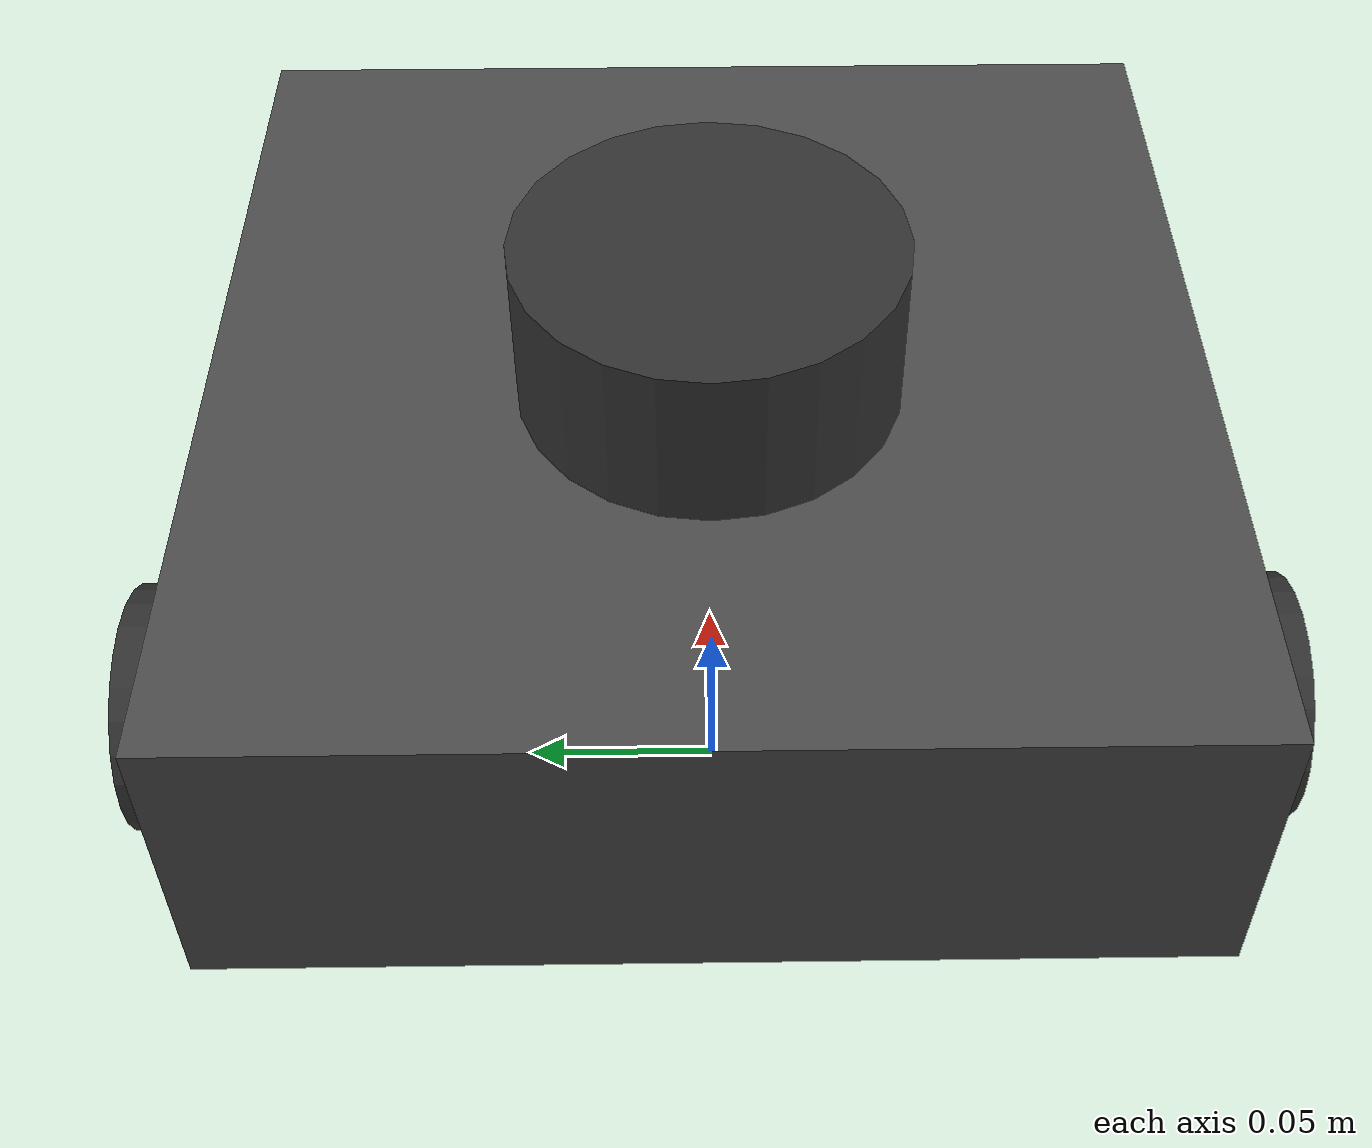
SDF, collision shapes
<?xml version="1.0" ?>
<sdf version="1.8">
  <model name="enemy_bot">
    <!-- Initial model pose: X Y Z Roll Pitch Yaw (Pre-baked 180 deg rotation) -->
    <pose>0.0 0.0 0.0 0.0 0.0 3.14159</pose>

    <link name="base_footprint"/>

    <link name="base_link">
      <inertial>
        <pose>-0.064 0 0.048 0 0 0</pose>
        <inertia>
          <ixx>4.2111447e-02</ixx><ixy>0</ixy><ixz>0</ixz>
          <iyy>4.2111447e-02</iyy><iyz>0</iyz><izz>7.5254874e-02</izz>
        </inertia>
        <mass>1.3729096e+00</mass>
      </inertial>

      <collision name="base_collision">
        <pose>-0.064 0 0.048 0 0 0</pose>
        <geometry>
          <box><size>0.265 0.265 0.089</size></box>
        </geometry>
      </collision>

      <visual name="base_visual">
        <pose>-0.064 0 0 0 0 0</pose>
        <geometry>
          <mesh>
            <uri>model://turtlebot3_common/meshes/bases/waffle_base.stl</uri>
            <scale>0.001 0.001 0.001</scale>
          </mesh>
        </geometry>
        <material>
          <ambient>0.3 0.3 0.3 1.0</ambient>
          <diffuse>0.3 0.3 0.3 1.0</diffuse>
        </material>
      </visual>
    </link>

    <link name="imu_link">
      <sensor name="tb3_imu" type="imu">
        <always_on>true</always_on>
        <!-- Lowered update rate to 50Hz to reduce CPU transport overhead -->
        <update_rate>50</update_rate>
        <topic>imu</topic>
        <gz_frame_id>enemy_bot/imu_link</gz_frame_id>
        <imu>
          <angular_velocity>
            <x><noise type="gaussian"><mean>0.0</mean><stddev>2e-4</stddev></noise></x>
            <y><noise type="gaussian"><mean>0.0</mean><stddev>2e-4</stddev></noise></y>
            <z><noise type="gaussian"><mean>0.0</mean><stddev>2e-4</stddev></noise></z>
          </angular_velocity>
          <linear_acceleration>
            <x><noise type="gaussian"><mean>0.0</mean><stddev>1.7e-2</stddev></noise></x>
            <y><noise type="gaussian"><mean>0.0</mean><stddev>1.7e-2</stddev></noise></y>
            <z><noise type="gaussian"><mean>0.0</mean><stddev>1.7e-2</stddev></noise></z>
          </linear_acceleration>
        </imu>
      </sensor>
    </link>

    <link name="base_scan">
      <inertial>
        <pose>-0.052 0 0.111 0 0 0</pose>
        <inertia>
          <ixx>0.001</ixx><ixy>0.000</ixy><ixz>0.000</ixz>
          <iyy>0.001</iyy><iyz>0.000</iyz><izz>0.001</izz>
        </inertia>
        <mass>0.114</mass>
      </inertial>

      <collision name="lidar_sensor_collision">
        <pose>-0.052 0 0.111 0 0 0</pose>
        <geometry>
          <cylinder><radius>0.0508</radius><length>0.055</length></cylinder>
        </geometry>
      </collision>

      <visual name="lidar_sensor_visual">
        <pose>-0.064 0 0.121 0 0 0</pose>
        <geometry>
          <mesh>
            <uri>model://turtlebot3_common/meshes/sensors/lds.stl</uri>
            <scale>0.001 0.001 0.001</scale>
          </mesh>
        </geometry>
        <material>
          <ambient>0.2 0.2 0.2 1.0</ambient>
          <diffuse>0.2 0.2 0.2 1.0</diffuse>
        </material>
      </visual>

      <sensor name="hls_lfcd_lds" type="gpu_lidar">
        <always_on>true</always_on>
        <visualize>true</visualize>
        <pose>-0.064 0 0.121 0 0 0</pose>
        <update_rate>10</update_rate>
        <topic>/enemy_bot/scan</topic>
        <gz_frame_id>enemy_bot/base_scan</gz_frame_id>
        <lidar>
          <scan>
            <horizontal>
              <samples>360</samples>
              <resolution>1.000000</resolution>
              <min_angle>0.000000</min_angle>
              <max_angle>6.280000</max_angle>
            </horizontal>
          </scan>
          <range>
            <min>0.120000</min>
            <max>3.5</max>
            <resolution>0.015000</resolution>
          </range>
          <noise>
            <type>gaussian</type>
            <mean>0.0</mean>
            <stddev>0.01</stddev>
          </noise>
        </lidar>
      </sensor>
    </link>

    <link name="wheel_left_link">
      <inertial>
        <pose>0.0 0.144 0.023 -1.57 0 0</pose>
        <inertia>
          <ixx>1.1175580e-05</ixx><ixy>-4.2369783e-11</ixy><ixz>-5.9381719e-09</ixz>
          <iyy>1.1192413e-05</iyy><iyz>-1.4400107e-11</iyz><izz>2.0712558e-05</izz>
        </inertia>
        <mass>0.1</mass>
      </inertial>
      <collision name="wheel_left_collision">
        <pose>0.0 0.144 0.023 -1.57 0 0</pose>
        <geometry>
          <cylinder><radius>0.033</radius><length>0.018</length></cylinder>
        </geometry>
        <surface>
          <!-- Normalized friction parameters to prevent contact shaking -->
          <friction>
            <ode>
              <mu>1.0</mu>
              <mu2>1.0</mu2>
              <fdir1>0 0 0</fdir1>
              <slip1>0.0</slip1>
              <slip2>0.0</slip2>
            </ode>
          </friction>
        </surface>
      </collision>
      <visual name="wheel_left_visual">
        <pose>0.0 0.144 0.023 0 0 0</pose>
        <geometry>
          <mesh>
            <uri>model://turtlebot3_common/meshes/wheels/left_tire.stl</uri>
            <scale>0.001 0.001 0.001</scale>
          </mesh>
        </geometry>
        <material>
          <ambient>0.2 0.2 0.2 1.0</ambient>
          <diffuse>0.2 0.2 0.2 1.0</diffuse>
        </material>
      </visual>
    </link>

    <link name="wheel_right_link">
      <inertial>
        <pose>0.0 -0.144 0.023 -1.57 0 0</pose>
        <inertia>
          <ixx>1.1175580e-05</ixx><ixy>-4.2369783e-11</ixy><ixz>-5.9381719e-09</ixz>
          <iyy>1.1192413e-05</iyy><iyz>-1.4400107e-11</iyz><izz>2.0712558e-05</izz>
        </inertia>
        <mass>0.1</mass>
      </inertial>
      <collision name="wheel_right_collision">
        <pose>0.0 -0.144 0.023 -1.57 0 0</pose>
        <geometry>
          <cylinder><radius>0.033</radius><length>0.018</length></cylinder>
        </geometry>
        <surface>
          <!-- Normalized friction parameters to prevent contact shaking -->
          <friction>
            <ode>
              <mu>1.0</mu>
              <mu2>1.0</mu2>
              <fdir1>0 0 0</fdir1>
              <slip1>0.0</slip1>
              <slip2>0.0</slip2>
            </ode>
          </friction>
        </surface>
      </collision>
      <visual name="wheel_right_visual">
        <pose>0.0 -0.144 0.023 0 0 0</pose>
        <geometry>
          <mesh>
            <uri>model://turtlebot3_common/meshes/wheels/right_tire.stl</uri>
            <scale>0.001 0.001 0.001</scale>
          </mesh>
        </geometry>
        <material>
          <ambient>0.2 0.2 0.2 1.0</ambient>
          <diffuse>0.2 0.2 0.2 1.0</diffuse>
        </material>
      </visual>
    </link>

    <link name='caster_back_right_link'>
      <pose>-0.177 -0.064 -0.004 -1.57 0 0</pose>
      <inertial>
        <mass>0.001</mass>
        <inertia>
          <ixx>0.00001</ixx><ixy>0.000</ixy><ixz>0.000</ixz>
          <iyy>0.00001</iyy><iyz>0.000</iyz><izz>0.00001</izz>
        </inertia>
      </inertial>
      <collision name='collision'>
        <geometry><sphere><radius>0.005000</radius></sphere></geometry>
      </collision>
    </link>

    <link name='caster_back_left_link'>
      <pose>-0.177 0.064 -0.004 -1.57 0 0</pose>
      <inertial>
        <mass>0.001</mass>
        <inertia>
          <ixx>0.00001</ixx><ixy>0.000</ixy><ixz>0.000</ixz>
          <iyy>0.00001</iyy><iyz>0.000</iyz><izz>0.00001</izz>
        </inertia>
      </inertial>
      <collision name='collision'>
        <geometry><sphere><radius>0.005000</radius></sphere></geometry>
      </collision>
    </link>

    <link name="camera_link"/>

    <link name="camera_rgb_frame">
      <inertial>
        <pose>0.069 -0.047 0.107 0 0 0</pose>
        <inertia>
          <ixx>0.001</ixx><ixy>0.000</ixy><ixz>0.000</ixz>
          <iyy>0.001</iyy><iyz>0.000</iyz><izz>0.001</izz>
        </inertia>
        <mass>0.035</mass>
      </inertial>
      <pose>0.069 -0.047 0.107 0 0 0</pose>
      <sensor name="camera" type="camera">
        <!-- Disabled camera render loop by default to maximize physics frame rate -->
        <always_on>false</always_on>
        <visualize>false</visualize>
        <update_rate>15</update_rate>
        <topic>camera/image_raw</topic>
        <gz_frame_id>enemy_bot/camera_rgb_frame</gz_frame_id>
        <camera name="intel_realsense_r200">
          <camera_info_topic>camera/camera_info</camera_info_topic>
          <horizontal_fov>1.02974</horizontal_fov>
          <image><width>640</width><height>480</height><format>R8G8B8</format></image>
          <clip><near>0.02</near><far>300</far></clip>
        </camera>
      </sensor>
    </link>

    <joint name="base_joint" type="fixed">
      <parent>base_footprint</parent>
      <child>base_link</child>
      <pose>0.0 0.0 0.010 0 0 0</pose>
    </joint>

    <joint name="wheel_left_joint" type="revolute">
      <parent>base_link</parent>
      <child>wheel_left_link</child>
      <pose>0.0 0.144 0.023 -1.57 0 0</pose>
      <axis><xyz>0 0 1</xyz><limit><effort>20</effort></limit></axis>
    </joint>

    <joint name="wheel_right_joint" type="revolute">
      <parent>base_link</parent>
      <child>wheel_right_link</child>
      <pose>0.0 -0.144 0.023 -1.57 0 0</pose>
      <axis><xyz>0 0 1</xyz><limit><effort>20</effort></limit></axis>
    </joint>

    <joint name='caster_back_right_joint' type='ball'>
      <parent>base_link</parent>
      <child>caster_back_right_link</child>
    </joint>

    <joint name='caster_back_left_joint' type='ball'>
      <parent>base_link</parent>
      <child>caster_back_left_link</child>
    </joint>

    <joint name="imu_joint" type="fixed">
      <parent>base_link</parent>
      <child>imu_link</child>
      <pose>-0.032 0 0.068 0 0 0</pose>
    </joint>

    <joint name="lidar_joint" type="fixed">
      <parent>base_link</parent>
      <child>base_scan</child>
      <pose>-0.064 0 0.121 0 0 0</pose>
    </joint>

    <joint name="camera_joint" type="fixed">
      <parent>base_link</parent>
      <child>camera_link</child>
      <pose>0.064 -0.065 0.094 0 0 0</pose>
    </joint>

    <joint name="camera_rgb_joint" type="fixed">
      <parent>camera_link</parent>
      <child>camera_rgb_frame</child>
      <pose>0.005 0.018 0.013 0 0 0</pose>
    </joint>

    <!-- Differential drive plugin scoped strictly to /enemy_bot -->
    <plugin filename="gz-sim-diff-drive-system" name="gz::sim::systems::DiffDrive">
      <left_joint>wheel_left_joint</left_joint>
      <right_joint>wheel_right_joint</right_joint>
      <wheel_separation>0.287</wheel_separation>
      <wheel_radius>0.033</wheel_radius>
      <max_linear_acceleration>1.0</max_linear_acceleration>

      <topic>/enemy_bot/cmd_vel</topic>
      <odom_topic>/enemy_bot/odom</odom_topic>
      <frame_id>enemy_bot/odom</frame_id>
      <child_frame_id>enemy_bot/base_footprint</child_frame_id>
      <odom_publisher_frequency>30</odom_publisher_frequency>
      <tf_topic>/enemy_bot/tf</tf_topic>
    </plugin>

    <!-- Joint state publisher scoped to /enemy_bot/joint_states -->
    <plugin filename="gz-sim-joint-state-publisher-system" name="gz::sim::systems::JointStatePublisher">
      <topic>/enemy_bot/joint_states</topic>
      <joint_name>wheel_left_joint</joint_name>
      <joint_name>wheel_right_joint</joint_name>
    </plugin>

  </model>
</sdf>
